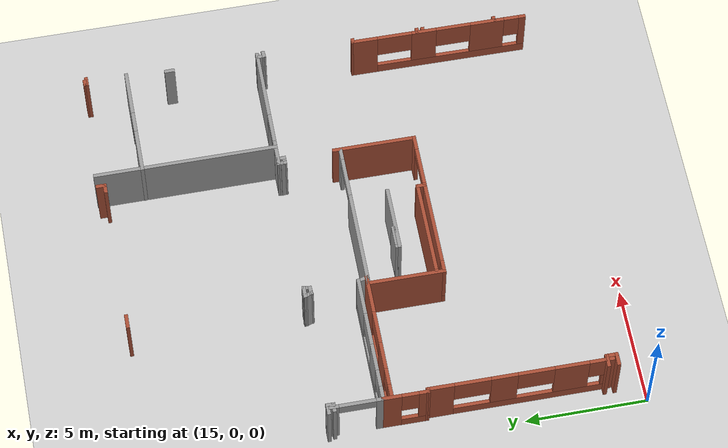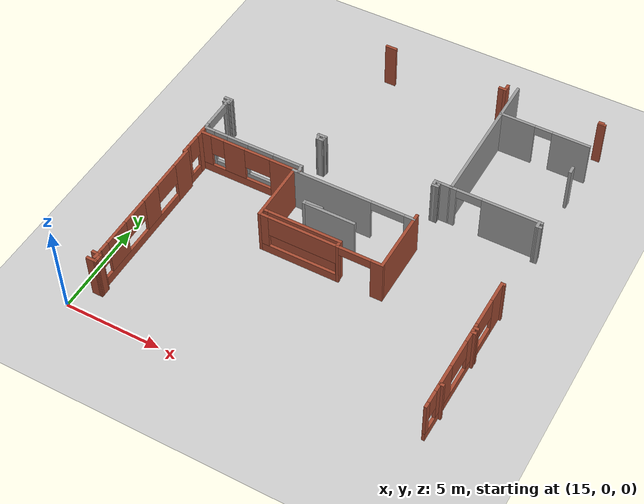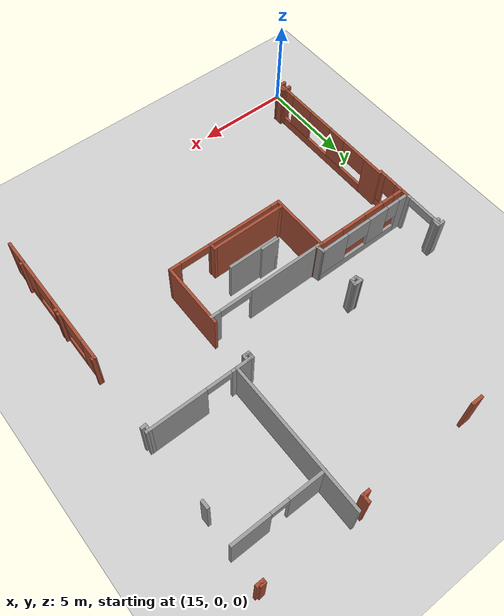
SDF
<sdf version="1.6">
 <world name="default">
  <model name="ground_plane">
   <static>1</static>
   <link name="link">
    <collision name="collision">
     <geometry><plane><normal>0 0 1</normal><size>100 100</size></plane></geometry>
     <surface><friction><ode><mu>100</mu><mu2>50</mu2></ode></friction></surface>
    </collision>
    <visual name="visual">
     <cast_shadows>0</cast_shadows>
     <geometry><plane><normal>0 0 1</normal><size>100 100</size></plane></geometry>
     <material>
      <script><uri>file://media/materials/scripts/gazebo.material</uri><name>Gazebo/Grey</name></script>
     </material>
    </visual>
   </link>
  </model>
  <model name="CVSSP">
   <pose>23.8714 24.094 0 0 -0 0</pose>
   <link name="Wall_119">
    <collision name="Wall_119_Collision">
     <geometry><box><size>0.297808 0.15 2.5</size></box></geometry>
     <pose>0 0 1.25 0 -0 0</pose>
    </collision>
    <visual name="Wall_119_Visual">
     <pose>0 0 1.25 0 -0 0</pose>
     <geometry><box><size>0.297808 0.15 2.5</size></box></geometry>
     <material>
      <script><uri>file://media/materials/scripts/gazebo.material</uri><name>Gazebo/Bricks</name></script>
      <ambient>1 1 1 1</ambient>
     </material>
    </visual>
    <pose>8.58427 -3.95789 0 0 0 -3.10353</pose>
   </link>
   <link name="Wall_123">
    <collision name="Wall_123_Collision">
     <geometry><box><size>0.415082 0.15 2.5</size></box></geometry>
     <pose>0 0 1.25 0 -0 0</pose>
    </collision>
    <visual name="Wall_123_Visual">
     <pose>0 0 1.25 0 -0 0</pose>
     <geometry><box><size>0.415082 0.15 2.5</size></box></geometry>
     <material>
      <script><uri>file://media/materials/scripts/gazebo.material</uri><name>Gazebo/Bricks</name></script>
      <ambient>1 1 1 1</ambient>
     </material>
    </visual>
    <pose>8.64275 -4.02875 0 0 -0 3.14159</pose>
   </link>
   <link name="Wall_181">
    <collision name="Wall_181_Collision">
     <geometry><box><size>0.25 0.15 2.5</size></box></geometry>
     <pose>0 0 1.25 0 -0 0</pose>
    </collision>
    <visual name="Wall_181_Visual">
     <pose>0 0 1.25 0 -0 0</pose>
     <geometry><box><size>0.25 0.15 2.5</size></box></geometry>
     <material>
      <script><uri>file://media/materials/scripts/gazebo.material</uri><name>Gazebo/Bricks</name></script>
      <ambient>1 1 1 1</ambient>
     </material>
    </visual>
    <pose>8.60751 -15.3023 0 0 -0 3.14159</pose>
   </link>
   <link name="Wall_182">
    <pose>8.54751 -18.9623 0 0 0 -1.57353</pose>
    <visual name="Wall_182_Visual_0">
     <pose>-3.1752 0 1.25 0 -0 0</pose>
     <geometry><box><size>1.11963 0.15 2.5</size></box></geometry>
     <material>
      <script><uri>file://media/materials/scripts/gazebo.material</uri><name>Gazebo/Bricks</name></script>
      <ambient>1 1 1 1</ambient>
     </material>
    </visual>
    <collision name="Wall_182_Collision_0">
     <geometry><box><size>1.11963 0.15 2.5</size></box></geometry>
     <pose>-3.1752 0 1.25 0 -0 0</pose>
    </collision>
    <visual name="Wall_182_Visual_1">
     <pose>0.559815 0 0.25 0 -0 0</pose>
     <geometry><box><size>6.3504 0.15 0.5</size></box></geometry>
     <material>
      <script><uri>file://media/materials/scripts/gazebo.material</uri><name>Gazebo/Bricks</name></script>
      <ambient>1 1 1 1</ambient>
     </material>
    </visual>
    <collision name="Wall_182_Collision_1">
     <geometry><box><size>6.3504 0.15 0.5</size></box></geometry>
     <pose>0.559815 0 0.25 0 -0 0</pose>
    </collision>
    <visual name="Wall_182_Visual_2">
     <pose>-0.626161 0 1.5 0 -0 0</pose>
     <geometry><box><size>1.05351 0.15 2</size></box></geometry>
     <material>
      <script><uri>file://media/materials/scripts/gazebo.material</uri><name>Gazebo/Bricks</name></script>
      <ambient>1 1 1 1</ambient>
     </material>
    </visual>
    <collision name="Wall_182_Collision_2">
     <geometry><box><size>1.05351 0.15 2</size></box></geometry>
     <pose>-0.626161 0 1.5 0 -0 0</pose>
    </collision>
    <visual name="Wall_182_Visual_3">
     <pose>2.08039 0 1.5 0 -0 0</pose>
     <geometry><box><size>1.44149 0.15 2</size></box></geometry>
     <material>
      <script><uri>file://media/materials/scripts/gazebo.material</uri><name>Gazebo/Bricks</name></script>
      <ambient>1 1 1 1</ambient>
     </material>
    </visual>
    <collision name="Wall_182_Collision_3">
     <geometry><box><size>1.44149 0.15 2</size></box></geometry>
     <pose>2.08039 0 1.5 0 -0 0</pose>
    </collision>
    <visual name="Wall_182_Visual_4">
     <pose>3.58898 0 1.5 0 -0 0</pose>
     <geometry><box><size>0.292074 0.15 2</size></box></geometry>
     <material>
      <script><uri>file://media/materials/scripts/gazebo.material</uri><name>Gazebo/Bricks</name></script>
      <ambient>1 1 1 1</ambient>
     </material>
    </visual>
    <collision name="Wall_182_Collision_4">
     <geometry><box><size>0.292074 0.15 2</size></box></geometry>
     <pose>3.58898 0 1.5 0 -0 0</pose>
    </collision>
    <visual name="Wall_182_Visual_5">
     <pose>-1.88415 0 1.9 0 -0 0</pose>
     <geometry><box><size>1.46246 0.15 1.2</size></box></geometry>
     <material>
      <script><uri>file://media/materials/scripts/gazebo.material</uri><name>Gazebo/Bricks</name></script>
      <ambient>1 1 1 1</ambient>
     </material>
    </visual>
    <collision name="Wall_182_Collision_5">
     <geometry><box><size>1.46246 0.15 1.2</size></box></geometry>
     <pose>-1.88415 0 1.9 0 -0 0</pose>
    </collision>
    <visual name="Wall_182_Visual_6">
     <pose>0.63012 0 1.9 0 -0 0</pose>
     <geometry><box><size>1.45905 0.15 1.2</size></box></geometry>
     <material>
      <script><uri>file://media/materials/scripts/gazebo.material</uri><name>Gazebo/Bricks</name></script>
      <ambient>1 1 1 1</ambient>
     </material>
    </visual>
    <collision name="Wall_182_Collision_6">
     <geometry><box><size>1.45905 0.15 1.2</size></box></geometry>
     <pose>0.63012 0 1.9 0 -0 0</pose>
    </collision>
    <visual name="Wall_182_Visual_7">
     <pose>3.12204 0 1.9 0 -0 0</pose>
     <geometry><box><size>0.641802 0.15 1.2</size></box></geometry>
     <material>
      <script><uri>file://media/materials/scripts/gazebo.material</uri><name>Gazebo/Bricks</name></script>
      <ambient>1 1 1 1</ambient>
     </material>
    </visual>
    <collision name="Wall_182_Collision_7">
     <geometry><box><size>0.641802 0.15 1.2</size></box></geometry>
     <pose>3.12204 0 1.9 0 -0 0</pose>
    </collision>
   </link>
   <link name="Wall_191">
    <collision name="Wall_191_Collision">
     <geometry><box><size>0.25 0.15 2.5</size></box></geometry>
     <pose>0 0 1.25 0 -0 0</pose>
    </collision>
    <visual name="Wall_191_Visual">
     <pose>0 0 1.25 0 -0 0</pose>
     <geometry><box><size>0.25 0.15 2.5</size></box></geometry>
     <material>
      <script><uri>file://media/materials/scripts/gazebo.material</uri><name>Gazebo/Bricks</name></script>
      <ambient>1 1 1 1</ambient>
     </material>
    </visual>
    <pose>8.62063 -21.3528 0 0 -0 0</pose>
   </link>
   <link name="Wall_505">
    <collision name="Wall_505_Collision">
     <geometry><box><size>3.5 0.15 2.5</size></box></geometry>
     <pose>0 0 1.25 0 -0 0</pose>
    </collision>
    <visual name="Wall_505_Visual">
     <pose>0 0 1.25 0 -0 0</pose>
     <geometry><box><size>3.5 0.15 2.5</size></box></geometry>
     <material>
      <script><uri>file://media/materials/scripts/gazebo.material</uri><name>Gazebo/Bricks</name></script>
      <ambient>1 1 1 1</ambient>
     </material>
    </visual>
    <pose>3.47947 -15.2523 0 0 0 -1.5708</pose>
   </link>
   <link name="Wall_506">
    <pose>0.304469 -16.9273 0 0 -0 3.14159</pose>
    <visual name="Wall_506_Visual_0">
     <pose>-2.93094 0 1.25 0 -0 0</pose>
     <geometry><box><size>0.638116 0.15 2.5</size></box></geometry>
     <material>
      <script><uri>file://media/materials/scripts/gazebo.material</uri><name>Gazebo/Bricks</name></script>
      <ambient>1 1 1 1</ambient>
     </material>
    </visual>
    <collision name="Wall_506_Collision_0">
     <geometry><box><size>0.638116 0.15 2.5</size></box></geometry>
     <pose>-2.93094 0 1.25 0 -0 0</pose>
    </collision>
    <visual name="Wall_506_Visual_1">
     <pose>-0.912696 0 1.25 0 -0 0</pose>
     <geometry><box><size>0.137507 0.15 2.5</size></box></geometry>
     <material>
      <script><uri>file://media/materials/scripts/gazebo.material</uri><name>Gazebo/Bricks</name></script>
      <ambient>1 1 1 1</ambient>
     </material>
    </visual>
    <collision name="Wall_506_Collision_1">
     <geometry><box><size>0.137507 0.15 2.5</size></box></geometry>
     <pose>-0.912696 0 1.25 0 -0 0</pose>
    </collision>
    <visual name="Wall_506_Visual_2">
     <pose>1.20303 0 0.25 0 -0 0</pose>
     <geometry><box><size>4.09394 0.15 0.5</size></box></geometry>
     <material>
      <script><uri>file://media/materials/scripts/gazebo.material</uri><name>Gazebo/Bricks</name></script>
      <ambient>1 1 1 1</ambient>
     </material>
    </visual>
    <collision name="Wall_506_Collision_2">
     <geometry><box><size>4.09394 0.15 0.5</size></box></geometry>
     <pose>1.20303 0 0.25 0 -0 0</pose>
    </collision>
    <visual name="Wall_506_Visual_3">
     <pose>2.97461 0 1.5 0 -0 0</pose>
     <geometry><box><size>0.550785 0.15 2</size></box></geometry>
     <material>
      <script><uri>file://media/materials/scripts/gazebo.material</uri><name>Gazebo/Bricks</name></script>
      <ambient>1 1 1 1</ambient>
     </material>
    </visual>
    <collision name="Wall_506_Collision_3">
     <geometry><box><size>0.550785 0.15 2</size></box></geometry>
     <pose>2.97461 0 1.5 0 -0 0</pose>
    </collision>
    <visual name="Wall_506_Visual_4">
     <pose>0.927636 0 1.9 0 -0 0</pose>
     <geometry><box><size>3.54316 0.15 1.2</size></box></geometry>
     <material>
      <script><uri>file://media/materials/scripts/gazebo.material</uri><name>Gazebo/Bricks</name></script>
      <ambient>1 1 1 1</ambient>
     </material>
    </visual>
    <collision name="Wall_506_Collision_4">
     <geometry><box><size>3.54316 0.15 1.2</size></box></geometry>
     <pose>0.927636 0 1.9 0 -0 0</pose>
    </collision>
    <visual name="Wall_506_Visual_5">
     <pose>-1.79667 0 2.25 0 -0 0</pose>
     <geometry><box><size>1.63044 0.15 0.5</size></box></geometry>
     <material>
      <script><uri>file://media/materials/scripts/gazebo.material</uri><name>Gazebo/Bricks</name></script>
      <ambient>1 1 1 1</ambient>
     </material>
    </visual>
    <collision name="Wall_506_Collision_5">
     <geometry><box><size>1.63044 0.15 0.5</size></box></geometry>
     <pose>-1.79667 0 2.25 0 -0 0</pose>
    </collision>
   </link>
   <link name="Wall_507">
    <collision name="Wall_507_Collision">
     <geometry><box><size>3.25 0.15 2.5</size></box></geometry>
     <pose>0 0 1.25 0 -0 0</pose>
    </collision>
    <visual name="Wall_507_Visual">
     <pose>0 0 1.25 0 -0 0</pose>
     <geometry><box><size>3.25 0.15 2.5</size></box></geometry>
     <material>
      <script><uri>file://media/materials/scripts/gazebo.material</uri><name>Gazebo/Bricks</name></script>
      <ambient>1 1 1 1</ambient>
     </material>
    </visual>
    <pose>-2.87053 -15.3773 0 0 -0 1.5708</pose>
   </link>
   <link name="Wall_508">
    <pose>0.304469 -13.8405 0 0 -0 0</pose>
    <visual name="Wall_508_Visual_0">
     <pose>-1.14297 0 1.25 0 -0 0</pose>
     <geometry><box><size>4.21406 0.15 2.5</size></box></geometry>
     <material>
      <script><uri>file://media/materials/scripts/gazebo.material</uri><name>Gazebo/Grey</name></script>
      <ambient>0.588235 0.588235 0.588235 1</ambient>
     </material>
    </visual>
    <collision name="Wall_508_Collision_0">
     <geometry><box><size>4.21406 0.15 2.5</size></box></geometry>
     <pose>-1.14297 0 1.25 0 -0 0</pose>
    </collision>
    <visual name="Wall_508_Visual_1">
     <pose>2.96572 0 1.25 0 -0 0</pose>
     <geometry><box><size>0.56855 0.15 2.5</size></box></geometry>
     <material>
      <script><uri>file://media/materials/scripts/gazebo.material</uri><name>Gazebo/Grey</name></script>
      <ambient>0.588235 0.588235 0.588235 1</ambient>
     </material>
    </visual>
    <collision name="Wall_508_Collision_1">
     <geometry><box><size>0.56855 0.15 2.5</size></box></geometry>
     <pose>2.96572 0 1.25 0 -0 0</pose>
    </collision>
    <visual name="Wall_508_Visual_2">
     <pose>1.82275 0 2.25 0 -0 0</pose>
     <geometry><box><size>1.71739 0.15 0.5</size></box></geometry>
     <material>
      <script><uri>file://media/materials/scripts/gazebo.material</uri><name>Gazebo/Grey</name></script>
      <ambient>0.588235 0.588235 0.588235 1</ambient>
     </material>
    </visual>
    <collision name="Wall_508_Collision_2">
     <geometry><box><size>1.71739 0.15 0.5</size></box></geometry>
     <pose>1.82275 0 2.25 0 -0 0</pose>
    </collision>
   </link>
   <link name="Wall_510">
    <pose>6.36165 -11.2424 0 0 -0 3.14159</pose>
    <visual name="Wall_510_Visual_0">
     <pose>-0.840975 0 1.25 0 -0 0</pose>
     <geometry><box><size>3.06805 0.15 2.5</size></box></geometry>
     <material>
      <script><uri>file://media/materials/scripts/gazebo.material</uri><name>Gazebo/Grey</name></script>
      <ambient>0.588235 0.588235 0.588235 1</ambient>
     </material>
    </visual>
    <collision name="Wall_510_Collision_0">
     <geometry><box><size>3.06805 0.15 2.5</size></box></geometry>
     <pose>-0.840975 0 1.25 0 -0 0</pose>
    </collision>
    <visual name="Wall_510_Visual_1">
     <pose>2.18353 0 1.25 0 -0 0</pose>
     <geometry><box><size>0.382947 0.15 2.5</size></box></geometry>
     <material>
      <script><uri>file://media/materials/scripts/gazebo.material</uri><name>Gazebo/Grey</name></script>
      <ambient>0.588235 0.588235 0.588235 1</ambient>
     </material>
    </visual>
    <collision name="Wall_510_Collision_1">
     <geometry><box><size>0.382947 0.15 2.5</size></box></geometry>
     <pose>2.18353 0 1.25 0 -0 0</pose>
    </collision>
    <visual name="Wall_510_Visual_2">
     <pose>1.34255 0 2.25 0 -0 0</pose>
     <geometry><box><size>1.299 0.15 0.5</size></box></geometry>
     <material>
      <script><uri>file://media/materials/scripts/gazebo.material</uri><name>Gazebo/Grey</name></script>
      <ambient>0.588235 0.588235 0.588235 1</ambient>
     </material>
    </visual>
    <collision name="Wall_510_Collision_2">
     <geometry><box><size>1.299 0.15 0.5</size></box></geometry>
     <pose>1.34255 0 2.25 0 -0 0</pose>
    </collision>
   </link>
   <link name="Wall_511">
    <collision name="Wall_511_Collision">
     <geometry><box><size>7.64004 0.15 2.5</size></box></geometry>
     <pose>0 0 1.25 0 -0 0</pose>
    </collision>
    <visual name="Wall_511_Visual">
     <pose>0 0 1.25 0 -0 0</pose>
     <geometry><box><size>7.64004 0.15 2.5</size></box></geometry>
     <material>
      <script><uri>file://media/materials/scripts/gazebo.material</uri><name>Gazebo/Grey</name></script>
      <ambient>0.588235 0.588235 0.588235 1</ambient>
     </material>
    </visual>
    <pose>4.07328 -7.49736 0 0 -0 1.5739</pose>
   </link>
   <link name="Wall_513">
    <pose>6.35679 -5.70156 0 0 -0 0</pose>
    <visual name="Wall_513_Visual_0">
     <pose>-1.42856 0 1.25 0 -0 0</pose>
     <geometry><box><size>1.89288 0.15 2.5</size></box></geometry>
     <material>
      <script><uri>file://media/materials/scripts/gazebo.material</uri><name>Gazebo/Grey</name></script>
      <ambient>0.588235 0.588235 0.588235 1</ambient>
     </material>
    </visual>
    <collision name="Wall_513_Collision_0">
     <geometry><box><size>1.89288 0.15 2.5</size></box></geometry>
     <pose>-1.42856 0 1.25 0 -0 0</pose>
    </collision>
    <visual name="Wall_513_Visual_1">
     <pose>1.39644 0 1.25 0 -0 0</pose>
     <geometry><box><size>1.95712 0.15 2.5</size></box></geometry>
     <material>
      <script><uri>file://media/materials/scripts/gazebo.material</uri><name>Gazebo/Grey</name></script>
      <ambient>0.588235 0.588235 0.588235 1</ambient>
     </material>
    </visual>
    <collision name="Wall_513_Collision_1">
     <geometry><box><size>1.95712 0.15 2.5</size></box></geometry>
     <pose>1.39644 0 1.25 0 -0 0</pose>
    </collision>
    <visual name="Wall_513_Visual_2">
     <pose>-0.032121 0 2.25 0 -0 0</pose>
     <geometry><box><size>0.9 0.15 0.5</size></box></geometry>
     <material>
      <script><uri>file://media/materials/scripts/gazebo.material</uri><name>Gazebo/Grey</name></script>
      <ambient>0.588235 0.588235 0.588235 1</ambient>
     </material>
    </visual>
    <collision name="Wall_513_Collision_2">
     <geometry><box><size>0.9 0.15 0.5</size></box></geometry>
     <pose>-0.032121 0 2.25 0 -0 0</pose>
    </collision>
   </link>
   <link name="Wall_515">
    <collision name="Wall_515_Collision">
     <geometry><box><size>0.96868 0.15 2.5</size></box></geometry>
     <pose>0 0 1.25 0 -0 0</pose>
    </collision>
    <visual name="Wall_515_Visual">
     <pose>0 0 1.25 0 -0 0</pose>
     <geometry><box><size>0.96868 0.15 2.5</size></box></geometry>
     <material>
      <script><uri>file://media/materials/scripts/gazebo.material</uri><name>Gazebo/Grey</name></script>
      <ambient>0.588235 0.588235 0.588235 1</ambient>
     </material>
    </visual>
    <pose>3.67558 -11.2435 0 0 0 -3.13878</pose>
   </link>
   <link name="Wall_516">
    <collision name="Wall_516_Collision">
     <geometry><box><size>0.299942 0.15 2.5</size></box></geometry>
     <pose>0 0 1.25 0 -0 0</pose>
    </collision>
    <visual name="Wall_516_Visual">
     <pose>0 0 1.25 0 -0 0</pose>
     <geometry><box><size>0.299942 0.15 2.5</size></box></geometry>
     <material>
      <script><uri>file://media/materials/scripts/gazebo.material</uri><name>Gazebo/Grey</name></script>
      <ambient>1 1 1 1</ambient>
     </material>
    </visual>
    <pose>3.26624 -11.3194 0 0 0 -1.5708</pose>
   </link>
   <link name="Wall_537">
    <pose>-8.036 -12.4082 0 0 0 -1.5708</pose>
    <visual name="Wall_537_Visual_0">
     <pose>-0.92041 0 1.25 0 -0 0</pose>
     <geometry><box><size>0.409181 0.15 2.5</size></box></geometry>
     <material>
      <script><uri>file://media/materials/scripts/gazebo.material</uri><name>Gazebo/Grey</name></script>
      <ambient>1 1 1 1</ambient>
     </material>
    </visual>
    <collision name="Wall_537_Collision_0">
     <geometry><box><size>0.409181 0.15 2.5</size></box></geometry>
     <pose>-0.92041 0 1.25 0 -0 0</pose>
    </collision>
    <visual name="Wall_537_Visual_1">
     <pose>0.95091 0 1.25 0 -0 0</pose>
     <geometry><box><size>0.34818 0.15 2.5</size></box></geometry>
     <material>
      <script><uri>file://media/materials/scripts/gazebo.material</uri><name>Gazebo/Grey</name></script>
      <ambient>1 1 1 1</ambient>
     </material>
    </visual>
    <collision name="Wall_537_Collision_1">
     <geometry><box><size>0.34818 0.15 2.5</size></box></geometry>
     <pose>0.95091 0 1.25 0 -0 0</pose>
    </collision>
    <visual name="Wall_537_Visual_2">
     <pose>0.0305 0 2.25 0 -0 0</pose>
     <geometry><box><size>1.49264 0.15 0.5</size></box></geometry>
     <material>
      <script><uri>file://media/materials/scripts/gazebo.material</uri><name>Gazebo/Grey</name></script>
      <ambient>1 1 1 1</ambient>
     </material>
    </visual>
    <collision name="Wall_537_Collision_2">
     <geometry><box><size>1.49264 0.15 0.5</size></box></geometry>
     <pose>0.0305 0 2.25 0 -0 0</pose>
    </collision>
   </link>
   <link name="Wall_538">
    <pose>-5.361 -13.4582 0 0 -0 0</pose>
    <visual name="Wall_538_Visual_0">
     <pose>-2.43267 0 1.25 0 -0 0</pose>
     <geometry><box><size>0.634665 0.15 2.5</size></box></geometry>
     <material>
      <script><uri>file://media/materials/scripts/gazebo.material</uri><name>Gazebo/Grey</name></script>
      <ambient>0.588235 0.588235 0.588235 1</ambient>
     </material>
    </visual>
    <collision name="Wall_538_Collision_0">
     <geometry><box><size>0.634665 0.15 2.5</size></box></geometry>
     <pose>-2.43267 0 1.25 0 -0 0</pose>
    </collision>
    <visual name="Wall_538_Visual_1">
     <pose>0.317332 0 0.25 0 -0 0</pose>
     <geometry><box><size>4.86533 0.15 0.5</size></box></geometry>
     <material>
      <script><uri>file://media/materials/scripts/gazebo.material</uri><name>Gazebo/Grey</name></script>
      <ambient>0.588235 0.588235 0.588235 1</ambient>
     </material>
    </visual>
    <collision name="Wall_538_Collision_1">
     <geometry><box><size>4.86533 0.15 0.5</size></box></geometry>
     <pose>0.317332 0 0.25 0 -0 0</pose>
    </collision>
    <visual name="Wall_538_Visual_2">
     <pose>-0.810818 0 1.5 0 -0 0</pose>
     <geometry><box><size>1.15893 0.15 2</size></box></geometry>
     <material>
      <script><uri>file://media/materials/scripts/gazebo.material</uri><name>Gazebo/Grey</name></script>
      <ambient>0.588235 0.588235 0.588235 1</ambient>
     </material>
    </visual>
    <collision name="Wall_538_Collision_2">
     <geometry><box><size>1.15893 0.15 2</size></box></geometry>
     <pose>-0.810818 0 1.5 0 -0 0</pose>
    </collision>
    <visual name="Wall_538_Visual_3">
     <pose>1.95518 0 1.5 0 -0 0</pose>
     <geometry><box><size>1.58965 0.15 2</size></box></geometry>
     <material>
      <script><uri>file://media/materials/scripts/gazebo.material</uri><name>Gazebo/Grey</name></script>
      <ambient>0.588235 0.588235 0.588235 1</ambient>
     </material>
    </visual>
    <collision name="Wall_538_Collision_3">
     <geometry><box><size>1.58965 0.15 2</size></box></geometry>
     <pose>1.95518 0 1.5 0 -0 0</pose>
    </collision>
    <visual name="Wall_538_Visual_4">
     <pose>-1.75281 0 1.9 0 -0 0</pose>
     <geometry><box><size>0.72505 0.15 1.2</size></box></geometry>
     <material>
      <script><uri>file://media/materials/scripts/gazebo.material</uri><name>Gazebo/Grey</name></script>
      <ambient>0.588235 0.588235 0.588235 1</ambient>
     </material>
    </visual>
    <collision name="Wall_538_Collision_4">
     <geometry><box><size>0.72505 0.15 1.2</size></box></geometry>
     <pose>-1.75281 0 1.9 0 -0 0</pose>
    </collision>
    <visual name="Wall_538_Visual_5">
     <pose>0.4645 0 1.9 0 -0 0</pose>
     <geometry><box><size>1.3917 0.15 1.2</size></box></geometry>
     <material>
      <script><uri>file://media/materials/scripts/gazebo.material</uri><name>Gazebo/Grey</name></script>
      <ambient>0.588235 0.588235 0.588235 1</ambient>
     </material>
    </visual>
    <collision name="Wall_538_Collision_5">
     <geometry><box><size>1.3917 0.15 1.2</size></box></geometry>
     <pose>0.4645 0 1.9 0 -0 0</pose>
    </collision>
   </link>
   <link name="Wall_539">
    <collision name="Wall_539_Collision">
     <geometry><box><size>0.505851 0.15 2.5</size></box></geometry>
     <pose>0 0 1.25 0 -0 0</pose>
    </collision>
    <visual name="Wall_539_Visual">
     <pose>0 0 1.25 0 -0 0</pose>
     <geometry><box><size>0.505851 0.15 2.5</size></box></geometry>
     <material>
      <script><uri>file://media/materials/scripts/gazebo.material</uri><name>Gazebo/Grey</name></script>
      <ambient>1 1 1 1</ambient>
     </material>
    </visual>
    <pose>-2.64978 -13.6324 0 0 0 -1.3658</pose>
   </link>
   <link name="Wall_541">
    <pose>-8.03948 -14.3557 0 0 0 -1.57468</pose>
    <visual name="Wall_541_Visual_0">
     <pose>-0.567331 0 1.25 0 -0 0</pose>
     <geometry><box><size>0.810426 0.15 2.5</size></box></geometry>
     <material>
      <script><uri>file://media/materials/scripts/gazebo.material</uri><name>Gazebo/Bricks</name></script>
      <ambient>1 1 1 1</ambient>
     </material>
    </visual>
    <collision name="Wall_541_Collision_0">
     <geometry><box><size>0.810426 0.15 2.5</size></box></geometry>
     <pose>-0.567331 0 1.25 0 -0 0</pose>
    </collision>
    <visual name="Wall_541_Visual_1">
     <pose>0.405213 0 0.25 0 -0 0</pose>
     <geometry><box><size>1.13466 0.15 0.5</size></box></geometry>
     <material>
      <script><uri>file://media/materials/scripts/gazebo.material</uri><name>Gazebo/Bricks</name></script>
      <ambient>1 1 1 1</ambient>
     </material>
    </visual>
    <collision name="Wall_541_Collision_1">
     <geometry><box><size>1.13466 0.15 0.5</size></box></geometry>
     <pose>0.405213 0 0.25 0 -0 0</pose>
    </collision>
    <visual name="Wall_541_Visual_2">
     <pose>0.750947 0 1.5 0 -0 0</pose>
     <geometry><box><size>0.443194 0.15 2</size></box></geometry>
     <material>
      <script><uri>file://media/materials/scripts/gazebo.material</uri><name>Gazebo/Bricks</name></script>
      <ambient>1 1 1 1</ambient>
     </material>
    </visual>
    <collision name="Wall_541_Collision_2">
     <geometry><box><size>0.443194 0.15 2</size></box></geometry>
     <pose>0.750947 0 1.5 0 -0 0</pose>
    </collision>
    <visual name="Wall_541_Visual_3">
     <pose>0.183616 0 1.9 0 -0 0</pose>
     <geometry><box><size>0.691468 0.15 1.2</size></box></geometry>
     <material>
      <script><uri>file://media/materials/scripts/gazebo.material</uri><name>Gazebo/Bricks</name></script>
      <ambient>1 1 1 1</ambient>
     </material>
    </visual>
    <collision name="Wall_541_Collision_3">
     <geometry><box><size>0.691468 0.15 1.2</size></box></geometry>
     <pose>0.183616 0 1.9 0 -0 0</pose>
    </collision>
   </link>
   <link name="Wall_542">
    <collision name="Wall_542_Collision">
     <geometry><box><size>0.25 0.15 2.5</size></box></geometry>
     <pose>0 0 1.25 0 -0 0</pose>
    </collision>
    <visual name="Wall_542_Visual">
     <pose>0 0 1.25 0 -0 0</pose>
     <geometry><box><size>0.25 0.15 2.5</size></box></geometry>
     <material>
      <script><uri>file://media/materials/scripts/gazebo.material</uri><name>Gazebo/Bricks</name></script>
      <ambient>1 1 1 1</ambient>
     </material>
    </visual>
    <pose>-7.99297 -15.2533 0 0 -0 0</pose>
   </link>
   <link name="Wall_543">
    <pose>-7.94297 -18.8033 0 0 0 -1.5708</pose>
    <visual name="Wall_543_Visual_0">
     <pose>-3.05686 0 1.25 0 -0 0</pose>
     <geometry><box><size>1.13628 0.15 2.5</size></box></geometry>
     <material>
      <script><uri>file://media/materials/scripts/gazebo.material</uri><name>Gazebo/Bricks</name></script>
      <ambient>1 1 1 1</ambient>
     </material>
    </visual>
    <collision name="Wall_543_Collision_0">
     <geometry><box><size>1.13628 0.15 2.5</size></box></geometry>
     <pose>-3.05686 0 1.25 0 -0 0</pose>
    </collision>
    <visual name="Wall_543_Visual_1">
     <pose>0.568139 0 0.25 0 -0 0</pose>
     <geometry><box><size>6.11372 0.15 0.5</size></box></geometry>
     <material>
      <script><uri>file://media/materials/scripts/gazebo.material</uri><name>Gazebo/Bricks</name></script>
      <ambient>1 1 1 1</ambient>
     </material>
    </visual>
    <collision name="Wall_543_Collision_1">
     <geometry><box><size>6.11372 0.15 0.5</size></box></geometry>
     <pose>0.568139 0 0.25 0 -0 0</pose>
    </collision>
    <visual name="Wall_543_Visual_2">
     <pose>-0.462946 0 1.5 0 -0 0</pose>
     <geometry><box><size>1.07655 0.15 2</size></box></geometry>
     <material>
      <script><uri>file://media/materials/scripts/gazebo.material</uri><name>Gazebo/Bricks</name></script>
      <ambient>1 1 1 1</ambient>
     </material>
    </visual>
    <collision name="Wall_543_Collision_2">
     <geometry><box><size>1.07655 0.15 2</size></box></geometry>
     <pose>-0.462946 0 1.5 0 -0 0</pose>
    </collision>
    <visual name="Wall_543_Visual_3">
     <pose>2.25573 0 1.5 0 -0 0</pose>
     <geometry><box><size>1.39706 0.15 2</size></box></geometry>
     <material>
      <script><uri>file://media/materials/scripts/gazebo.material</uri><name>Gazebo/Bricks</name></script>
      <ambient>1 1 1 1</ambient>
     </material>
    </visual>
    <collision name="Wall_543_Collision_3">
     <geometry><box><size>1.39706 0.15 2</size></box></geometry>
     <pose>2.25573 0 1.5 0 -0 0</pose>
    </collision>
    <visual name="Wall_543_Visual_4">
     <pose>2.25573 0 1.5 0 -0 0</pose>
     <geometry><box><size>1.39706 0.15 2</size></box></geometry>
     <material>
      <script><uri>file://media/materials/scripts/gazebo.material</uri><name>Gazebo/Bricks</name></script>
      <ambient>1 1 1 1</ambient>
     </material>
    </visual>
    <collision name="Wall_543_Collision_4">
     <geometry><box><size>1.39706 0.15 2</size></box></geometry>
     <pose>2.25573 0 1.5 0 -0 0</pose>
    </collision>
    <visual name="Wall_543_Visual_5">
     <pose>-1.74497 0 1.9 0 -0 0</pose>
     <geometry><box><size>1.4875 0.15 1.2</size></box></geometry>
     <material>
      <script><uri>file://media/materials/scripts/gazebo.material</uri><name>Gazebo/Bricks</name></script>
      <ambient>1 1 1 1</ambient>
     </material>
    </visual>
    <collision name="Wall_543_Collision_5">
     <geometry><box><size>1.4875 0.15 1.2</size></box></geometry>
     <pose>-1.74497 0 1.9 0 -0 0</pose>
    </collision>
    <visual name="Wall_543_Visual_6">
     <pose>0.816261 0 1.9 0 -0 0</pose>
     <geometry><box><size>1.48187 0.15 1.2</size></box></geometry>
     <material>
      <script><uri>file://media/materials/scripts/gazebo.material</uri><name>Gazebo/Bricks</name></script>
      <ambient>1 1 1 1</ambient>
     </material>
    </visual>
    <collision name="Wall_543_Collision_6">
     <geometry><box><size>1.48187 0.15 1.2</size></box></geometry>
     <pose>0.816261 0 1.9 0 -0 0</pose>
    </collision>
    <visual name="Wall_543_Visual_7">
     <pose>3.28963 0 1.9 0 -0 0</pose>
     <geometry><box><size>0.670742 0.15 1.2</size></box></geometry>
     <material>
      <script><uri>file://media/materials/scripts/gazebo.material</uri><name>Gazebo/Bricks</name></script>
      <ambient>1 1 1 1</ambient>
     </material>
    </visual>
    <collision name="Wall_543_Collision_7">
     <geometry><box><size>0.670742 0.15 1.2</size></box></geometry>
     <pose>3.28963 0 1.9 0 -0 0</pose>
    </collision>
    <visual name="Wall_543_Visual_8">
     <pose>3.28963 0 1.9 0 -0 0</pose>
     <geometry><box><size>0.670742 0.15 1.2</size></box></geometry>
     <material>
      <script><uri>file://media/materials/scripts/gazebo.material</uri><name>Gazebo/Bricks</name></script>
      <ambient>1 1 1 1</ambient>
     </material>
    </visual>
    <collision name="Wall_543_Collision_8">
     <geometry><box><size>0.670742 0.15 1.2</size></box></geometry>
     <pose>3.28963 0 1.9 0 -0 0</pose>
    </collision>
   </link>
   <link name="Wall_544">
    <collision name="Wall_544_Collision">
     <geometry><box><size>0.5 0.15 2.5</size></box></geometry>
     <pose>0 0 1.25 0 -0 0</pose>
    </collision>
    <visual name="Wall_544_Visual">
     <pose>0 0 1.25 0 -0 0</pose>
     <geometry><box><size>0.5 0.15 2.5</size></box></geometry>
     <material>
      <script><uri>file://media/materials/scripts/gazebo.material</uri><name>Gazebo/Bricks</name></script>
      <ambient>1 1 1 1</ambient>
     </material>
    </visual>
    <pose>-7.94297 -22.5283 0 0 0 -1.5708</pose>
   </link>
   <link name="Wall_596">
    <collision name="Wall_596_Collision">
     <geometry><box><size>4 0.15 2.5</size></box></geometry>
     <pose>0 0 1.25 0 -0 0</pose>
    </collision>
    <visual name="Wall_596_Visual">
     <pose>0 0 1.25 0 -0 0</pose>
     <geometry><box><size>4 0.15 2.5</size></box></geometry>
     <material>
      <script><uri>file://media/materials/scripts/gazebo.material</uri><name>Gazebo/Bricks</name></script>
      <ambient>1 1 1 1</ambient>
     </material>
    </visual>
    <pose>-0.740764 -16.6286 0 0 -0 0</pose>
   </link>
   <link name="Wall_598">
    <collision name="Wall_598_Collision">
     <geometry><box><size>0.429619 0.15 2.5</size></box></geometry>
     <pose>0 0 1.25 0 -0 0</pose>
    </collision>
    <visual name="Wall_598_Visual">
     <pose>0 0 1.25 0 -0 0</pose>
     <geometry><box><size>0.429619 0.15 2.5</size></box></geometry>
     <material>
      <script><uri>file://media/materials/scripts/gazebo.material</uri><name>Gazebo/Bricks</name></script>
      <ambient>1 1 1 1</ambient>
     </material>
    </visual>
    <pose>1.18424 -16.7682 0 0 0 -1.5708</pose>
   </link>
   <link name="Wall_600">
    <collision name="Wall_600_Collision">
     <geometry><box><size>2.75 0.15 2.5</size></box></geometry>
     <pose>0 0 1.25 0 -0 0</pose>
    </collision>
    <visual name="Wall_600_Visual">
     <pose>0 0 1.25 0 -0 0</pose>
     <geometry><box><size>2.75 0.15 2.5</size></box></geometry>
     <material>
      <script><uri>file://media/materials/scripts/gazebo.material</uri><name>Gazebo/Grey</name></script>
      <ambient>0.588235 0.588235 0.588235 1</ambient>
     </material>
    </visual>
    <pose>-0.115764 -15.3784 0 0 -0 3.14159</pose>
   </link>
   <link name="Wall_601">
    <collision name="Wall_601_Collision">
     <geometry><box><size>0.25 0.15 2.5</size></box></geometry>
     <pose>0 0 1.25 0 -0 0</pose>
    </collision>
    <visual name="Wall_601_Visual">
     <pose>0 0 1.25 0 -0 0</pose>
     <geometry><box><size>0.25 0.15 2.5</size></box></geometry>
     <material>
      <script><uri>file://media/materials/scripts/gazebo.material</uri><name>Gazebo/Grey</name></script>
      <ambient>1 1 1 1</ambient>
     </material>
    </visual>
    <pose>-1.41576 -15.3284 0 0 -0 1.5708</pose>
   </link>
   <link name="Wall_602">
    <collision name="Wall_602_Collision">
     <geometry><box><size>1 0.15 2.5</size></box></geometry>
     <pose>0 0 1.25 0 -0 0</pose>
    </collision>
    <visual name="Wall_602_Visual">
     <pose>0 0 1.25 0 -0 0</pose>
     <geometry><box><size>1 0.15 2.5</size></box></geometry>
     <material>
      <script><uri>file://media/materials/scripts/gazebo.material</uri><name>Gazebo/Grey</name></script>
      <ambient>0.588235 0.588235 0.588235 1</ambient>
     </material>
    </visual>
    <pose>-0.990764 -15.2784 0 0 -0 0</pose>
   </link>
   <link name="Wall_768">
    <collision name="Wall_768_Collision">
     <geometry><box><size>0.25 0.15 2.5</size></box></geometry>
     <pose>0 0 1.25 0 -0 0</pose>
    </collision>
    <visual name="Wall_768_Visual">
     <pose>0 0 1.25 0 -0 0</pose>
     <geometry><box><size>0.25 0.15 2.5</size></box></geometry>
     <material>
      <script><uri>file://media/materials/scripts/gazebo.material</uri><name>Gazebo/Bricks</name></script>
      <ambient>1 1 1 1</ambient>
     </material>
    </visual>
    <pose>8.63163 -18.0542 0 0 -0 0</pose>
   </link>
   <link name="Wall_770">
    <collision name="Wall_770_Collision">
     <geometry><box><size>0.25 0.15 2.5</size></box></geometry>
     <pose>0 0 1.25 0 -0 0</pose>
    </collision>
    <visual name="Wall_770_Visual">
     <pose>0 0 1.25 0 -0 0</pose>
     <geometry><box><size>0.25 0.15 2.5</size></box></geometry>
     <material>
      <script><uri>file://media/materials/scripts/gazebo.material</uri><name>Gazebo/Bricks</name></script>
      <ambient>1 1 1 1</ambient>
     </material>
    </visual>
    <pose>8.63163 -18.302 0 0 -0 3.14159</pose>
   </link>
   <link name="Wall_807">
    <collision name="Wall_807_Collision">
     <geometry><box><size>0.60862 0.15 2.5</size></box></geometry>
     <pose>0 0 1.25 0 -0 0</pose>
    </collision>
    <visual name="Wall_807_Visual">
     <pose>0 0 1.25 0 -0 0</pose>
     <geometry><box><size>0.60862 0.15 2.5</size></box></geometry>
     <material>
      <script><uri>file://media/materials/scripts/gazebo.material</uri><name>Gazebo/Bricks</name></script>
      <ambient>1 1 1 1</ambient>
     </material>
    </visual>
    <pose>-2.82277 -4.08199 0 0 -0 0</pose>
   </link>
   <link name="Wall_811">
    <collision name="Wall_811_Collision">
     <geometry><box><size>0.429611 0.15 2.5</size></box></geometry>
     <pose>0 0 1.25 0 -0 0</pose>
    </collision>
    <visual name="Wall_811_Visual">
     <pose>0 0 1.25 0 -0 0</pose>
     <geometry><box><size>0.429611 0.15 2.5</size></box></geometry>
     <material>
      <script><uri>file://media/materials/scripts/gazebo.material</uri><name>Gazebo/Bricks</name></script>
      <ambient>1 1 1 1</ambient>
     </material>
    </visual>
    <pose>3.39627 -4.08199 0 0 -0 0</pose>
   </link>
   <link name="Wall_812">
    <collision name="Wall_812_Collision">
     <geometry><box><size>0.451586 0.15 2.5</size></box></geometry>
     <pose>0 0 1.25 0 -0 0</pose>
    </collision>
    <visual name="Wall_812_Visual">
     <pose>0 0 1.25 0 -0 0</pose>
     <geometry><box><size>0.451586 0.15 2.5</size></box></geometry>
     <material>
      <script><uri>file://media/materials/scripts/gazebo.material</uri><name>Gazebo/Bricks</name></script>
      <ambient>1 1 1 1</ambient>
     </material>
    </visual>
    <pose>3.53608 -3.93164 0 0 -0 1.5708</pose>
   </link>
   <link name="Wall_819">
    <collision name="Wall_819_Collision">
     <geometry><box><size>0.25 0.15 2.5</size></box></geometry>
     <pose>0 0 1.25 0 -0 0</pose>
    </collision>
    <visual name="Wall_819_Visual">
     <pose>0 0 1.25 0 -0 0</pose>
     <geometry><box><size>0.25 0.15 2.5</size></box></geometry>
     <material>
      <script><uri>file://media/materials/scripts/gazebo.material</uri><name>Gazebo/Bricks</name></script>
      <ambient>1 1 1 1</ambient>
     </material>
    </visual>
    <pose>-2.71576 -16.6286 0 0 -0 3.14159</pose>
   </link>
   <link name="Wall_821">
    <pose>-5.27357 -13.8066 0 0 -0 3.14159</pose>
    <visual name="Wall_821_Visual_0">
     <pose>-1.9171 0 1.25 0 -0 0</pose>
     <geometry><box><size>1.66581 0.15 2.5</size></box></geometry>
     <material>
      <script><uri>file://media/materials/scripts/gazebo.material</uri><name>Gazebo/Bricks</name></script>
      <ambient>1 1 1 1</ambient>
     </material>
    </visual>
    <collision name="Wall_821_Collision_0">
     <geometry><box><size>1.66581 0.15 2.5</size></box></geometry>
     <pose>-1.9171 0 1.25 0 -0 0</pose>
    </collision>
    <visual name="Wall_821_Visual_1">
     <pose>0.832904 0 0.25 0 -0 0</pose>
     <geometry><box><size>3.83419 0.15 0.5</size></box></geometry>
     <material>
      <script><uri>file://media/materials/scripts/gazebo.material</uri><name>Gazebo/Bricks</name></script>
      <ambient>1 1 1 1</ambient>
     </material>
    </visual>
    <collision name="Wall_821_Collision_1">
     <geometry><box><size>3.83419 0.15 0.5</size></box></geometry>
     <pose>0.832904 0 0.25 0 -0 0</pose>
    </collision>
    <visual name="Wall_821_Visual_2">
     <pose>0.892612 0 1.5 0 -0 0</pose>
     <geometry><box><size>1.1702 0.15 2</size></box></geometry>
     <material>
      <script><uri>file://media/materials/scripts/gazebo.material</uri><name>Gazebo/Bricks</name></script>
      <ambient>1 1 1 1</ambient>
     </material>
    </visual>
    <collision name="Wall_821_Collision_2">
     <geometry><box><size>1.1702 0.15 2</size></box></geometry>
     <pose>0.892612 0 1.5 0 -0 0</pose>
    </collision>
    <visual name="Wall_821_Visual_3">
     <pose>2.46889 0 1.5 0 -0 0</pose>
     <geometry><box><size>0.562226 0.15 2</size></box></geometry>
     <material>
      <script><uri>file://media/materials/scripts/gazebo.material</uri><name>Gazebo/Bricks</name></script>
      <ambient>1 1 1 1</ambient>
     </material>
    </visual>
    <collision name="Wall_821_Collision_3">
     <geometry><box><size>0.562226 0.15 2</size></box></geometry>
     <pose>2.46889 0 1.5 0 -0 0</pose>
    </collision>
    <visual name="Wall_821_Visual_4">
     <pose>-0.388341 0 1.9 0 -0 0</pose>
     <geometry><box><size>1.3917 0.15 1.2</size></box></geometry>
     <material>
      <script><uri>file://media/materials/scripts/gazebo.material</uri><name>Gazebo/Bricks</name></script>
      <ambient>1 1 1 1</ambient>
     </material>
    </visual>
    <collision name="Wall_821_Collision_4">
     <geometry><box><size>1.3917 0.15 1.2</size></box></geometry>
     <pose>-0.388341 0 1.9 0 -0 0</pose>
    </collision>
    <visual name="Wall_821_Visual_5">
     <pose>1.83274 0 1.9 0 -0 0</pose>
     <geometry><box><size>0.71006 0.15 1.2</size></box></geometry>
     <material>
      <script><uri>file://media/materials/scripts/gazebo.material</uri><name>Gazebo/Bricks</name></script>
      <ambient>1 1 1 1</ambient>
     </material>
    </visual>
    <collision name="Wall_821_Collision_5">
     <geometry><box><size>0.71006 0.15 1.2</size></box></geometry>
     <pose>1.83274 0 1.9 0 -0 0</pose>
    </collision>
   </link>
   <link name="Wall_827">
    <collision name="Wall_827_Collision">
     <geometry><box><size>0.554556 0.15 2.5</size></box></geometry>
     <pose>0 0 1.25 0 -0 0</pose>
    </collision>
    <visual name="Wall_827_Visual">
     <pose>0 0 1.25 0 -0 0</pose>
     <geometry><box><size>0.554556 0.15 2.5</size></box></geometry>
     <material>
      <script><uri>file://media/materials/scripts/gazebo.material</uri><name>Gazebo/Bricks</name></script>
      <ambient>1 1 1 1</ambient>
     </material>
    </visual>
    <pose>-7.99341 -22.4757 0 0 -0 0</pose>
   </link>
   <link name="Wall_828">
    <collision name="Wall_828_Collision">
     <geometry><box><size>0.553944 0.15 2.5</size></box></geometry>
     <pose>0 0 1.25 0 -0 0</pose>
    </collision>
    <visual name="Wall_828_Visual">
     <pose>0 0 1.25 0 -0 0</pose>
     <geometry><box><size>0.553944 0.15 2.5</size></box></geometry>
     <material>
      <script><uri>file://media/materials/scripts/gazebo.material</uri><name>Gazebo/Bricks</name></script>
      <ambient>1 1 1 1</ambient>
     </material>
    </visual>
    <pose>-7.78894 -22.6776 0 0 0 -1.55999</pose>
   </link>
   <link name="Wall_829">
    <collision name="Wall_829_Collision">
     <geometry><box><size>0.560707 0.15 2.5</size></box></geometry>
     <pose>0 0 1.25 0 -0 0</pose>
    </collision>
    <visual name="Wall_829_Visual">
     <pose>0 0 1.25 0 -0 0</pose>
     <geometry><box><size>0.560707 0.15 2.5</size></box></geometry>
     <material>
      <script><uri>file://media/materials/scripts/gazebo.material</uri><name>Gazebo/Bricks</name></script>
      <ambient>1 1 1 1</ambient>
     </material>
    </visual>
    <pose>-7.99208 -22.8796 0 0 -0 3.14159</pose>
   </link>
   <link name="Wall_844">
    <collision name="Wall_844_Collision">
     <geometry><box><size>0.487216 0.15 2.5</size></box></geometry>
     <pose>0 0 1.25 0 -0 0</pose>
    </collision>
    <visual name="Wall_844_Visual">
     <pose>0 0 1.25 0 -0 0</pose>
     <geometry><box><size>0.487216 0.15 2.5</size></box></geometry>
     <material>
      <script><uri>file://media/materials/scripts/gazebo.material</uri><name>Gazebo/Grey</name></script>
      <ambient>1 1 1 1</ambient>
     </material>
    </visual>
    <pose>-8.08094 -11.2624 0 0 -0 0</pose>
   </link>
   <link name="Wall_845">
    <collision name="Wall_845_Collision">
     <geometry><box><size>0.383617 0.15 2.5</size></box></geometry>
     <pose>0 0 1.25 0 -0 0</pose>
    </collision>
    <visual name="Wall_845_Visual">
     <pose>0 0 1.25 0 -0 0</pose>
     <geometry><box><size>0.383617 0.15 2.5</size></box></geometry>
     <material>
      <script><uri>file://media/materials/scripts/gazebo.material</uri><name>Gazebo/Grey</name></script>
      <ambient>1 1 1 1</ambient>
     </material>
    </visual>
    <pose>-7.91666 -11.3791 0 0 0 -1.60782</pose>
   </link>
   <link name="Wall_846">
    <collision name="Wall_846_Collision">
     <geometry><box><size>0.409541 0.15 2.5</size></box></geometry>
     <pose>0 0 1.25 0 -0 0</pose>
    </collision>
    <visual name="Wall_846_Visual">
     <pose>0 0 1.25 0 -0 0</pose>
     <geometry><box><size>0.409541 0.15 2.5</size></box></geometry>
     <material>
      <script><uri>file://media/materials/scripts/gazebo.material</uri><name>Gazebo/Grey</name></script>
      <ambient>1 1 1 1</ambient>
     </material>
    </visual>
    <pose>-8.05068 -11.4958 0 0 -0 3.14159</pose>
   </link>
   <link name="Wall_849">
    <collision name="Wall_849_Collision">
     <geometry><box><size>0.513155 0.15 2.5</size></box></geometry>
     <pose>0 0 1.25 0 -0 0</pose>
    </collision>
    <visual name="Wall_849_Visual">
     <pose>0 0 1.25 0 -0 0</pose>
     <geometry><box><size>0.513155 0.15 2.5</size></box></geometry>
     <material>
      <script><uri>file://media/materials/scripts/gazebo.material</uri><name>Gazebo/Grey</name></script>
      <ambient>1 1 1 1</ambient>
     </material>
    </visual>
    <pose>-2.80222 -11.2451 0 0 -0 0</pose>
   </link>
   <link name="Wall_850">
    <collision name="Wall_850_Collision">
     <geometry><box><size>0.394561 0.15 2.5</size></box></geometry>
     <pose>0 0 1.25 0 -0 0</pose>
    </collision>
    <visual name="Wall_850_Visual">
     <pose>0 0 1.25 0 -0 0</pose>
     <geometry><box><size>0.394561 0.15 2.5</size></box></geometry>
     <material>
      <script><uri>file://media/materials/scripts/gazebo.material</uri><name>Gazebo/Grey</name></script>
      <ambient>1 1 1 1</ambient>
     </material>
    </visual>
    <pose>-2.63794 -11.3661 0 0 0 -1.71269</pose>
   </link>
   <link name="Wall_851">
    <collision name="Wall_851_Collision">
     <geometry><box><size>0.400899 0.15 2.5</size></box></geometry>
     <pose>0 0 1.25 0 -0 0</pose>
    </collision>
    <visual name="Wall_851_Visual">
     <pose>0 0 1.25 0 -0 0</pose>
     <geometry><box><size>0.400899 0.15 2.5</size></box></geometry>
     <material>
      <script><uri>file://media/materials/scripts/gazebo.material</uri><name>Gazebo/Grey</name></script>
      <ambient>1 1 1 1</ambient>
     </material>
    </visual>
    <pose>-2.78061 -11.4915 0 0 0 -3.10712</pose>
   </link>
   <link name="Wall_852">
    <collision name="Wall_852_Collision">
     <geometry><box><size>0.412548 0.15 2.5</size></box></geometry>
     <pose>0 0 1.25 0 -0 0</pose>
    </collision>
    <visual name="Wall_852_Visual">
     <pose>0 0 1.25 0 -0 0</pose>
     <geometry><box><size>0.412548 0.15 2.5</size></box></geometry>
     <material>
      <script><uri>file://media/materials/scripts/gazebo.material</uri><name>Gazebo/Grey</name></script>
      <ambient>1 1 1 1</ambient>
     </material>
    </visual>
    <pose>-2.94489 -11.3705 0 0 -0 1.87172</pose>
   </link>
   <link name="Wall_854">
    <collision name="Wall_854_Collision">
     <geometry><box><size>0.254118 0.15 2.5</size></box></geometry>
     <pose>0 0 1.25 0 -0 0</pose>
    </collision>
    <visual name="Wall_854_Visual">
     <pose>0 0 1.25 0 -0 0</pose>
     <geometry><box><size>0.254118 0.15 2.5</size></box></geometry>
     <material>
      <script><uri>file://media/materials/scripts/gazebo.material</uri><name>Gazebo/Grey</name></script>
      <ambient>1 1 1 1</ambient>
     </material>
    </visual>
    <pose>3.26333 -11.444 0 0 0 -1.48765</pose>
   </link>
   <link name="Wall_855">
    <collision name="Wall_855_Collision">
     <geometry><box><size>0.383617 0.15 2.5</size></box></geometry>
     <pose>0 0 1.25 0 -0 0</pose>
    </collision>
    <visual name="Wall_855_Visual">
     <pose>0 0 1.25 0 -0 0</pose>
     <geometry><box><size>0.383617 0.15 2.5</size></box></geometry>
     <material>
      <script><uri>file://media/materials/scripts/gazebo.material</uri><name>Gazebo/Grey</name></script>
      <ambient>1 1 1 1</ambient>
     </material>
    </visual>
    <pose>3.38438 -11.4958 0 0 -0 0</pose>
   </link>
   <link name="Wall_856">
    <collision name="Wall_856_Collision">
     <geometry><box><size>0.392258 0.15 2.5</size></box></geometry>
     <pose>0 0 1.25 0 -0 0</pose>
    </collision>
    <visual name="Wall_856_Visual">
     <pose>0 0 1.25 0 -0 0</pose>
     <geometry><box><size>0.392258 0.15 2.5</size></box></geometry>
     <material>
      <script><uri>file://media/materials/scripts/gazebo.material</uri><name>Gazebo/Grey</name></script>
      <ambient>1 1 1 1</ambient>
     </material>
    </visual>
    <pose>3.49679 -11.3748 0 0 -0 1.6065</pose>
   </link>
   <link name="Wall_859">
    <collision name="Wall_859_Collision">
     <geometry><box><size>0.314512 0.15 2.5</size></box></geometry>
     <pose>0 0 1.25 0 -0 0</pose>
    </collision>
    <visual name="Wall_859_Visual">
     <pose>0 0 1.25 0 -0 0</pose>
     <geometry><box><size>0.314512 0.15 2.5</size></box></geometry>
     <material>
      <script><uri>file://media/materials/scripts/gazebo.material</uri><name>Gazebo/Grey</name></script>
      <ambient>1 1 1 1</ambient>
     </material>
    </visual>
    <pose>8.63284 -11.5002 0 0 0 -3.08901</pose>
   </link>
   <link name="Wall_860">
    <collision name="Wall_860_Collision">
     <geometry><box><size>0.418183 0.15 2.5</size></box></geometry>
     <pose>0 0 1.25 0 -0 0</pose>
    </collision>
    <visual name="Wall_860_Visual">
     <pose>0 0 1.25 0 -0 0</pose>
     <geometry><box><size>0.418183 0.15 2.5</size></box></geometry>
     <material>
      <script><uri>file://media/materials/scripts/gazebo.material</uri><name>Gazebo/Grey</name></script>
      <ambient>1 1 1 1</ambient>
     </material>
    </visual>
    <pose>8.54637 -11.3705 0 0 -0 1.60304</pose>
   </link>
   <link name="Wall_863">
    <collision name="Wall_863_Collision">
     <geometry><box><size>0.431212 0.15 2.5</size></box></geometry>
     <pose>0 0 1.25 0 -0 0</pose>
    </collision>
    <visual name="Wall_863_Visual">
     <pose>0 0 1.25 0 -0 0</pose>
     <geometry><box><size>0.431212 0.15 2.5</size></box></geometry>
     <material>
      <script><uri>file://media/materials/scripts/gazebo.material</uri><name>Gazebo/Grey</name></script>
      <ambient>1 1 1 1</ambient>
     </material>
    </visual>
    <pose>8.53729 -7.50718 0 0 0 -1.54754</pose>
   </link>
   <static>1</static>
  </model>
 </world>
</sdf>
